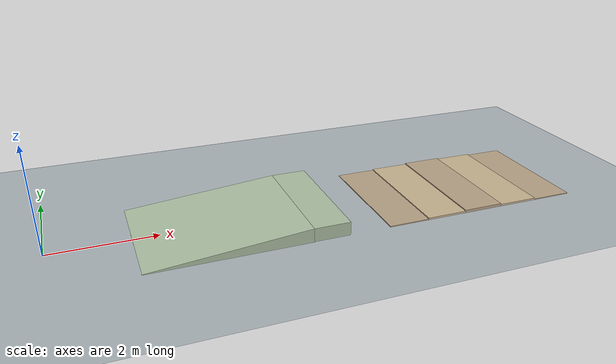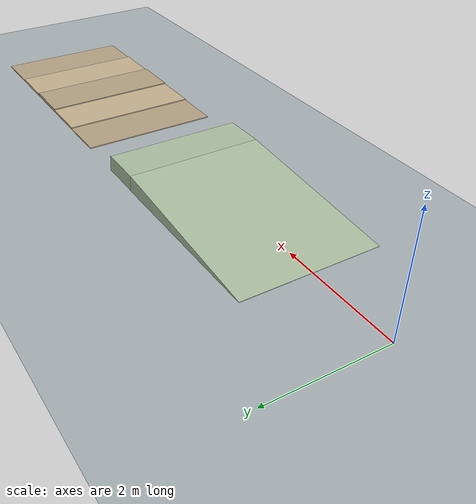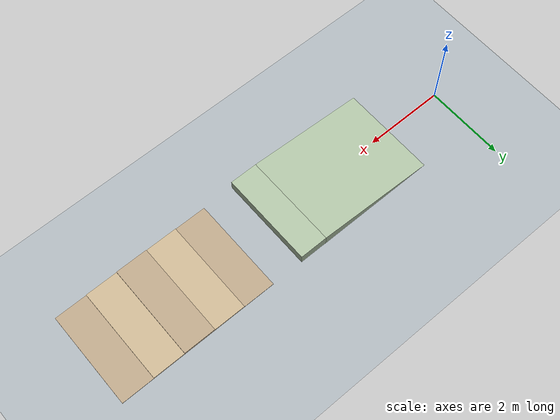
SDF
<?xml version="1.0"?>
<sdf version="1.6">
  <world name="myrbf_multi_terrain">
    <gravity>0 0 -9.81</gravity>
    <physics name="ode_1ms" type="ode">
      <max_step_size>0.001</max_step_size>
      <real_time_update_rate>1000</real_time_update_rate>
      <ode><solver><type>quick</type><iters>500</iters></solver></ode>
    </physics>
    <scene><ambient>0.55 0.55 0.55 1</ambient><background>0.78 0.84 0.90 1</background><shadows>true</shadows></scene>
    <light name="sun" type="directional"><pose>0 0 10 0 0 0</pose><diffuse>0.9 0.9 0.9 1</diffuse><specular>0.15 0.15 0.15 1</specular><direction>-0.3 0.3 -1</direction><cast_shadows>true</cast_shadows></light>
    <!-- All terrain has matching visible and collision geometry. Ground z=0. -->
    <model name="flat_ground"><static>true</static><link name="ground">
      <collision name="collision"><geometry><plane><normal>0 0 1</normal><size>30 20</size></plane></geometry><surface><friction><ode><mu>0.8</mu><mu2>0.8</mu2></ode></friction></surface></collision>
      <visual name="visual"><geometry><plane><normal>0 0 1</normal><size>30 20</size></plane></geometry><material><ambient>0.65 0.68 0.70 1</ambient><diffuse>0.65 0.68 0.70 1</diffuse></material></visual>
    </link></model>
    <model name="slope_5deg"><static>true</static><pose>3.0130733614 0 -0.0181962095 0 -0.0872664626 0</pose><link name="ramp">
      <collision name="collision"><geometry><box><size>3.0114595126 2.4 0.3</size></box></geometry><surface><friction><ode><mu>0.8</mu><mu2>0.8</mu2></ode></friction></surface></collision>
      <visual name="visual"><geometry><box><size>3.0114595126 2.4 0.3</size></box></geometry><material><ambient>0.66 0.73 0.62 1</ambient><diffuse>0.66 0.73 0.62 1</diffuse></material></visual>
    </link></model>
    <model name="slope_top_platform"><static>true</static><pose>4.85 0 0.1312329953 0 0 0</pose><link name="platform">
      <collision name="collision"><geometry><box><size>0.7 2.4 0.2624659906</size></box></geometry></collision>
      <visual name="visual"><geometry><box><size>0.7 2.4 0.2624659906</size></box></geometry><material><ambient>0.66 0.73 0.62 1</ambient><diffuse>0.66 0.73 0.62 1</diffuse></material></visual>
    </link></model>
    <!-- Separate low-step zone x=6..10; each adjacent rise/drop is 0.02 m. -->
    <model name="step_01_2cm"><static>true</static><pose>6.4 0 0.01 0 0 0</pose><link name="step">
      <collision name="collision"><geometry><box><size>0.8 2.4 0.02</size></box></geometry></collision>
      <visual name="visual"><geometry><box><size>0.8 2.4 0.02</size></box></geometry><material><ambient>0.70 0.62 0.51 1</ambient><diffuse>0.70 0.62 0.51 1</diffuse></material></visual>
    </link></model>
    <model name="step_02_4cm"><static>true</static><pose>7.2 0 0.02 0 0 0</pose><link name="step">
      <collision name="collision"><geometry><box><size>0.8 2.4 0.04</size></box></geometry></collision>
      <visual name="visual"><geometry><box><size>0.8 2.4 0.04</size></box></geometry><material><ambient>0.76 0.68 0.55 1</ambient><diffuse>0.76 0.68 0.55 1</diffuse></material></visual>
    </link></model>
    <model name="step_03_6cm"><static>true</static><pose>8 0 0.03 0 0 0</pose><link name="step">
      <collision name="collision"><geometry><box><size>0.8 2.4 0.06</size></box></geometry></collision>
      <visual name="visual"><geometry><box><size>0.8 2.4 0.06</size></box></geometry><material><ambient>0.70 0.62 0.51 1</ambient><diffuse>0.70 0.62 0.51 1</diffuse></material></visual>
    </link></model>
    <model name="step_04_4cm"><static>true</static><pose>8.8 0 0.02 0 0 0</pose><link name="step">
      <collision name="collision"><geometry><box><size>0.8 2.4 0.04</size></box></geometry></collision>
      <visual name="visual"><geometry><box><size>0.8 2.4 0.04</size></box></geometry><material><ambient>0.76 0.68 0.55 1</ambient><diffuse>0.76 0.68 0.55 1</diffuse></material></visual>
    </link></model>
    <model name="step_05_2cm"><static>true</static><pose>9.6 0 0.01 0 0 0</pose><link name="step">
      <collision name="collision"><geometry><box><size>0.8 2.4 0.02</size></box></geometry></collision>
      <visual name="visual"><geometry><box><size>0.8 2.4 0.02</size></box></geometry><material><ambient>0.70 0.62 0.51 1</ambient><diffuse>0.70 0.62 0.51 1</diffuse></material></visual>
    </link></model>
    <!-- Gazebo camera; capture sensor_msgs/Image after go2 exists, through ROS. -->
    <model name="experiment_camera"><static>true</static><pose>-1.5 -5 5 0 0.61 0.695</pose><link name="camera_link">
      <sensor name="scene_camera" type="camera"><always_on>true</always_on><update_rate>5</update_rate>
        <camera><horizontal_fov>1.10</horizontal_fov><image><width>1600</width><height>900</height><format>R8G8B8</format></image><clip><near>0.1</near><far>60</far></clip></camera>
        <plugin name="scene_camera_ros" filename="libgazebo_ros_camera.so"><robotNamespace>/myrbf_scene</robotNamespace><cameraName>overview</cameraName><imageTopicName>image_raw</imageTopicName><cameraInfoTopicName>camera_info</cameraInfoTopicName><frameName>scene_camera_optical_frame</frameName><updateRate>5</updateRate></plugin>
      </sensor>
    </link></model>
  </world>
</sdf>
